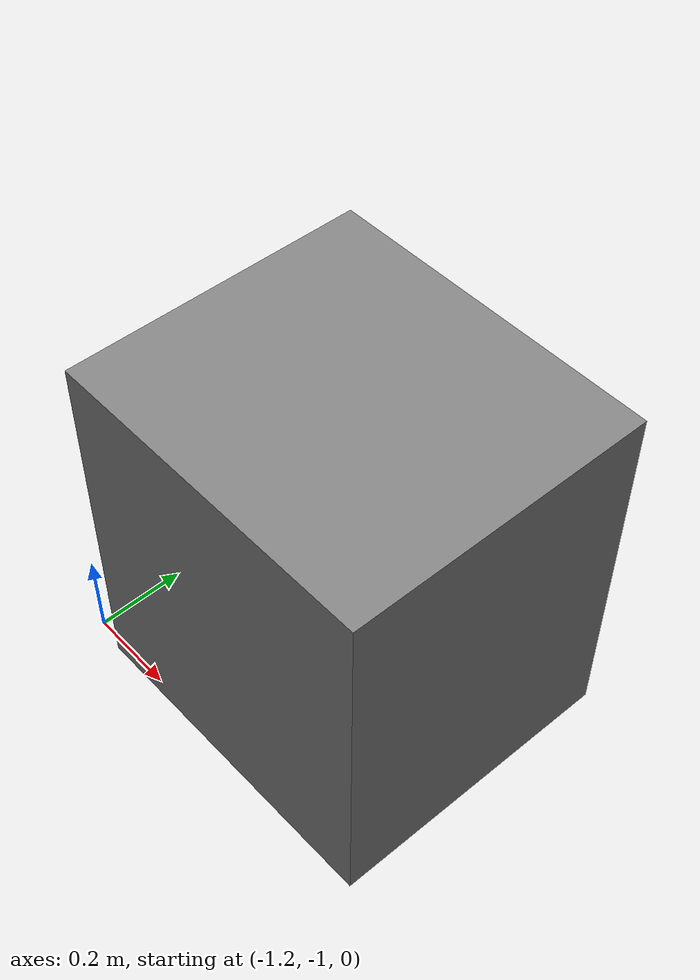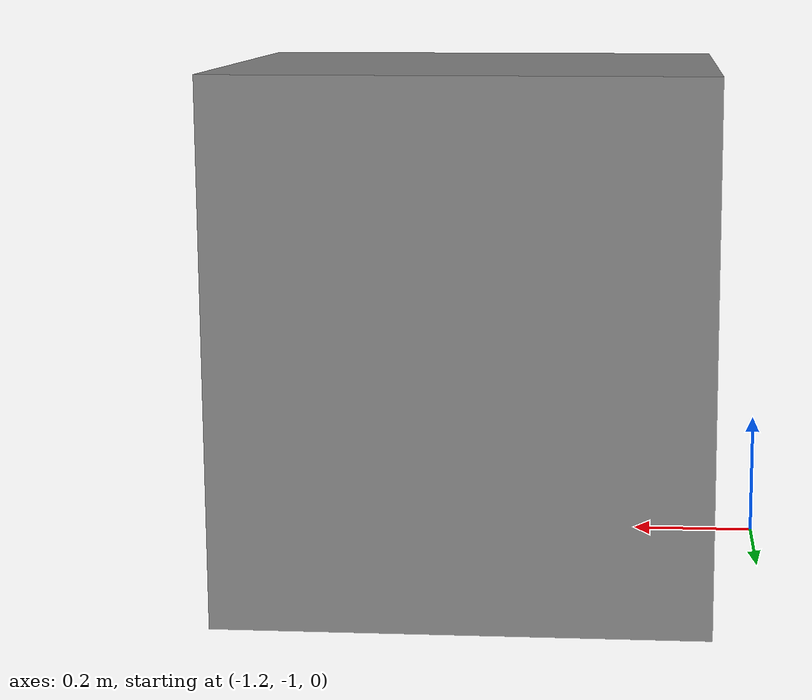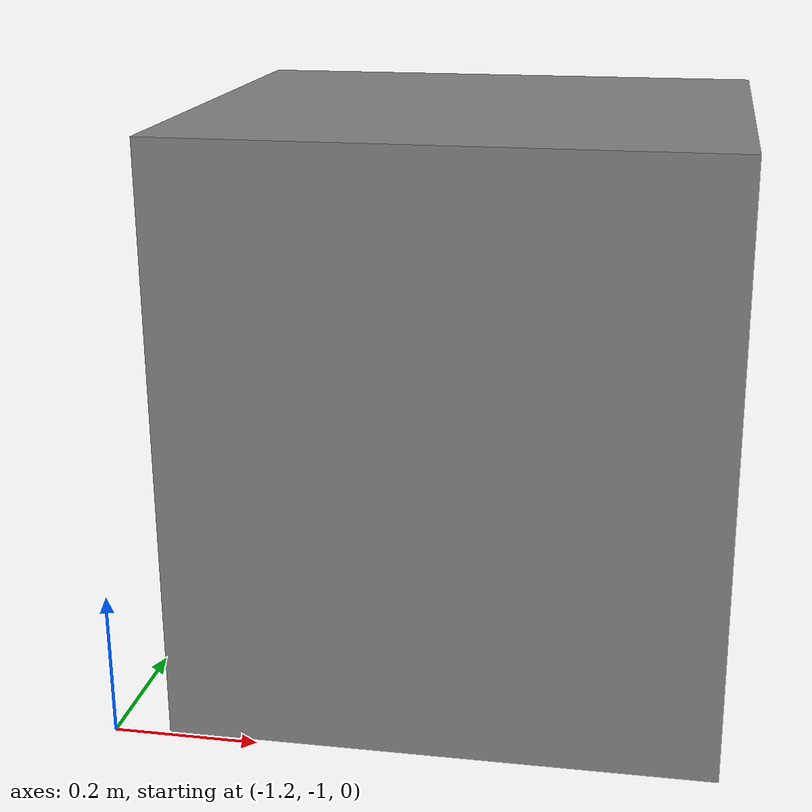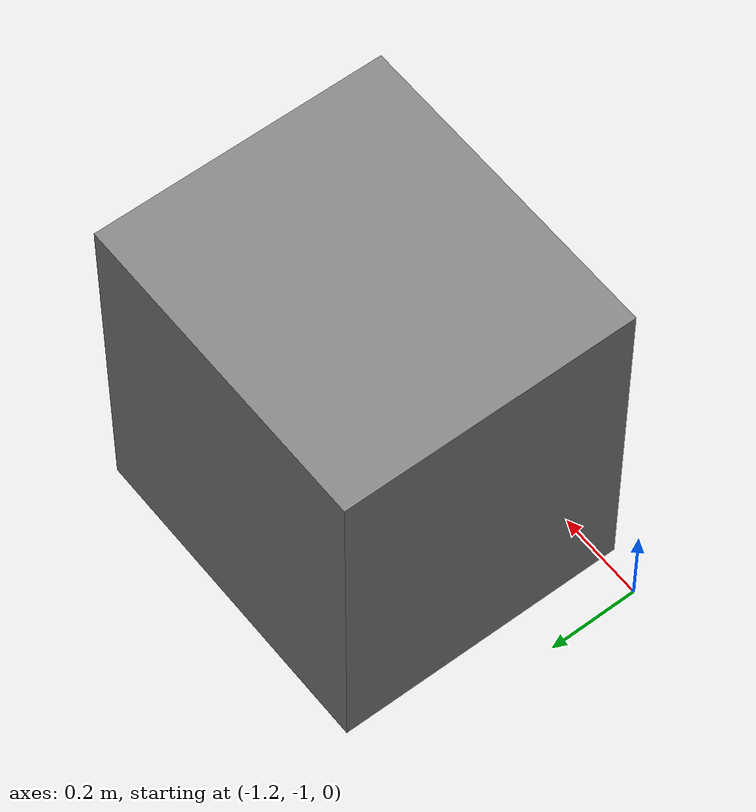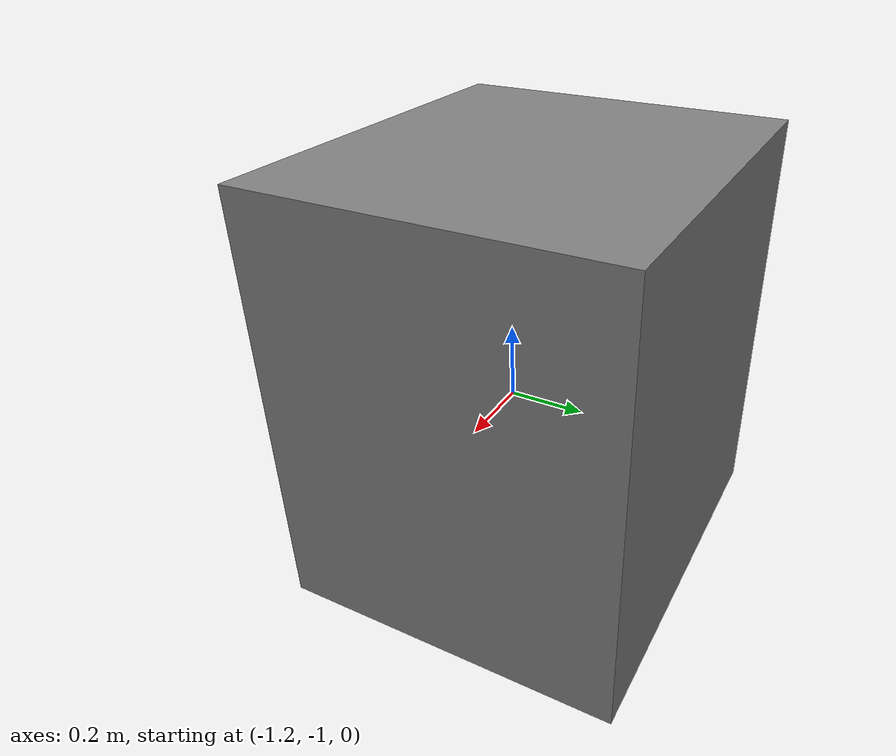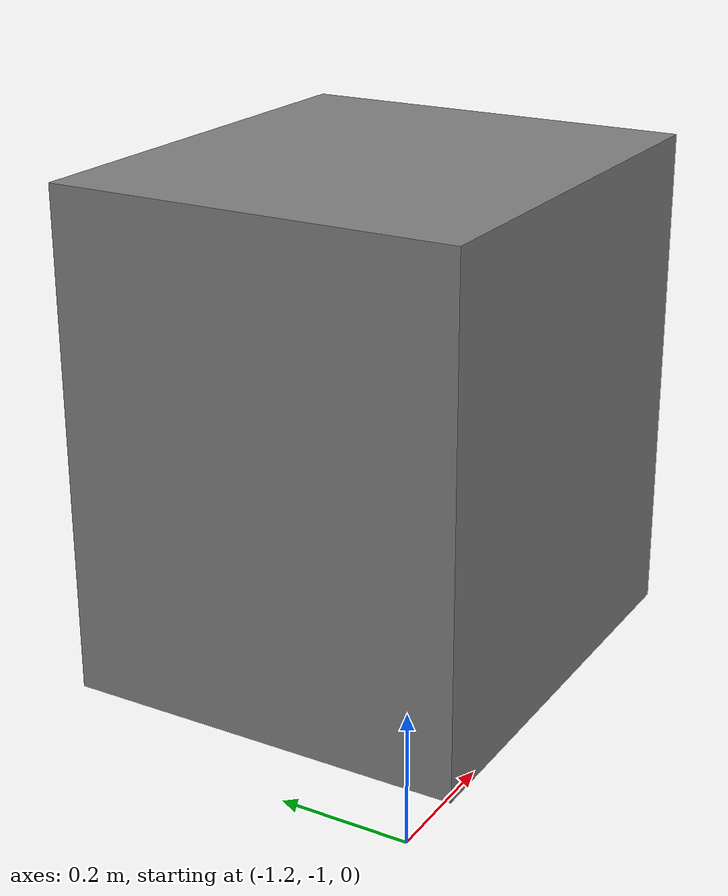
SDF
<?xml version="1.0" ?>
<sdf version="1.6">
  <model name="ur_cart">
    <static>true</static>

    <link name="ur_cart_link">

      <visual name="ur_cart_visual">
        <pose>-0.75 -0.7 0.41989375 0 0 0</pose>
        <geometry>
          <box>
            <size> 0.727075 0.644525 0.8001 </size>
          </box>
        </geometry>
        <material>
            <ambient>0.0 0.0 0.0 1.0</ambient>
            <diffuse>0.5 0.5 0.5 1.0</diffuse>
        </material>
      </visual>

      <collision name="ur_cart_collision">
        <pose>1.0 -1.375 0.40005 0 0 0</pose>
        <geometry>
          <box>
            <size> 0.727075 0.644525 0.8001 </size>
          </box>
        </geometry>
      </collision>

    </link>
  </model>
</sdf>
